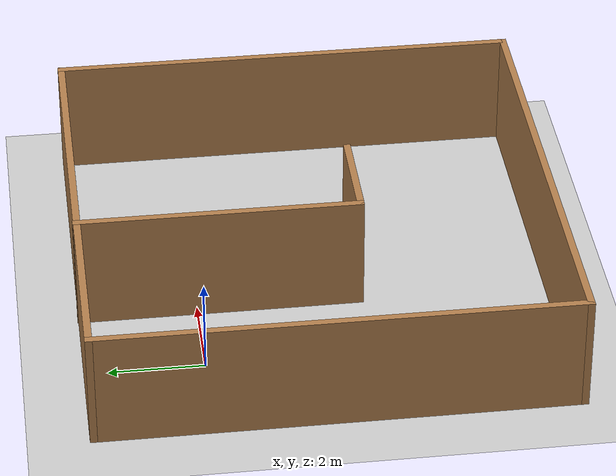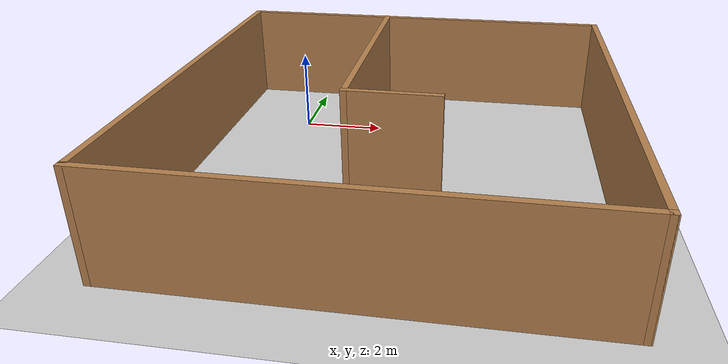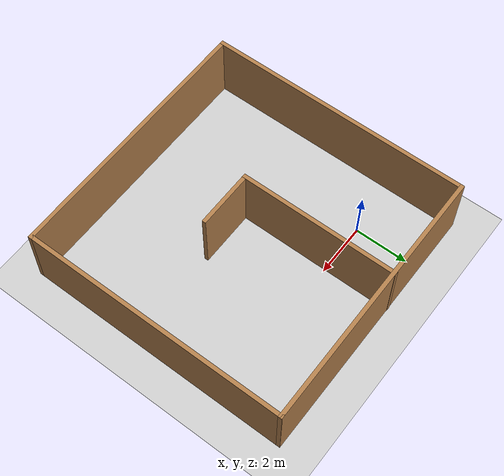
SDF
<sdf version="1.7">
 <world name="default">
  <light name="sun" type="directional">
   <pose>0 0 10 0 -0 0</pose>
   <diffuse>0.8 0.8 0.8 1</diffuse>
   <specular>0.2 0.2 0.2 1</specular>
   <attenuation>
    <range>1000</range>
    <constant>0.9</constant>
    <linear>0.01</linear>
    <quadratic>0.001</quadratic>
   </attenuation>
   <direction>-0.5 0.1 -0.9</direction>
   <spot><inner_angle>0</inner_angle><outer_angle>0</outer_angle><falloff>0</falloff></spot>
  </light>
  <model name="ground_plane">
   <static>1</static>
   <link name="link">
    <collision name="collision">
     <geometry><plane><normal>0 0 1</normal><size>100 100</size></plane></geometry>
     <surface>
      <contact><collide_bitmask>65535</collide_bitmask></contact>
      <friction><ode><mu>100</mu><mu2>50</mu2></ode></friction>
     </surface>
    </collision>
    <visual name="visual">
     <cast_shadows>0</cast_shadows>
     <geometry><plane><normal>0 0 1</normal><size>100 100</size></plane></geometry>
     <material>
      <script><uri>file://media/materials/scripts/gazebo.material</uri><name>Gazebo/Grey</name></script>
     </material>
    </visual>
   </link>
  </model>
  <gravity>0 0 -9.8</gravity>
  <magnetic_field>6e-06 2.3e-05 -4.2e-05</magnetic_field>
  <atmosphere type="adiabatic"/>
  <physics type="ode">
   <max_step_size>0.001</max_step_size>
   <real_time_factor>1</real_time_factor>
   <real_time_update_rate>1000</real_time_update_rate>
  </physics>
  <scene><ambient>0.4 0.4 0.4 1</ambient><background>0.7 0.7 0.7 1</background><shadows>1</shadows></scene>
  <spherical_coordinates>
   <surface_model>EARTH_WGS84</surface_model>
   <latitude_deg>0</latitude_deg>
   <longitude_deg>0</longitude_deg>
   <elevation>0</elevation>
   <heading_deg>0</heading_deg>
  </spherical_coordinates>
  <model name="house2">
   <pose>6.5 -2.5 0 0 -0 0</pose>
   <link name="Wall_0">
    <collision name="Wall_0_Collision">
     <geometry><box><size>10 0.15 2.5</size></box></geometry>
     <pose>0 0 1.25 0 -0 0</pose>
    </collision>
    <visual name="Wall_0_Visual">
     <pose>0 0 1.25 0 -0 0</pose>
     <geometry><box><size>10 0.15 2.5</size></box></geometry>
     <material>
      <script><uri>file://media/materials/scripts/gazebo.material</uri><name>Gazebo/Wood</name></script>
      <ambient>0.760784 0.662745 0.627451 1</ambient>
     </material>
     <meta><layer>0</layer></meta>
    </visual>
    <pose>-3.68093 -4.93232 0 0 -0 0</pose>
   </link>
   <link name="Wall_1">
    <collision name="Wall_1_Collision">
     <geometry><box><size>10 0.15 2.5</size></box></geometry>
     <pose>0 0 1.25 0 -0 0</pose>
    </collision>
    <visual name="Wall_1_Visual">
     <pose>0 0 1.25 0 -0 0</pose>
     <geometry><box><size>10 0.15 2.5</size></box></geometry>
     <material>
      <script><uri>file://media/materials/scripts/gazebo.material</uri><name>Gazebo/Wood</name></script>
      <ambient>1 1 1 1</ambient>
     </material>
     <meta><layer>0</layer></meta>
    </visual>
    <pose>1.24393 -0.007321 0 0 -0 1.57082</pose>
   </link>
   <link name="Wall_3">
    <collision name="Wall_3_Collision">
     <geometry><box><size>10 0.15 2.5</size></box></geometry>
     <pose>0 0 1.25 0 -0 0</pose>
    </collision>
    <visual name="Wall_3_Visual">
     <pose>0 0 1.25 0 -0 0</pose>
     <geometry><box><size>10 0.15 2.5</size></box></geometry>
     <material>
      <script><uri>file://media/materials/scripts/gazebo.material</uri><name>Gazebo/Wood</name></script>
      <ambient>1 1 1 1</ambient>
     </material>
     <meta><layer>0</layer></meta>
    </visual>
    <pose>-8.60593 -0.007321 0 0 -0 1.5708</pose>
   </link>
   <link name="Wall_4">
    <collision name="Wall_4_Collision">
     <geometry><box><size>10 0.15 2.5</size></box></geometry>
     <pose>0 0 1.25 0 -0 0</pose>
    </collision>
    <visual name="Wall_4_Visual">
     <pose>0 0 1.25 0 -0 0</pose>
     <geometry><box><size>10 0.15 2.5</size></box></geometry>
     <material>
      <script><uri>file://media/materials/scripts/gazebo.material</uri><name>Gazebo/Wood</name></script>
      <ambient>1 1 1 1</ambient>
     </material>
     <meta><layer>0</layer></meta>
    </visual>
    <pose>-3.68107 4.91768 0 0 -0 0</pose>
   </link>
   <link name="Wall_6">
    <collision name="Wall_6_Collision">
     <geometry><box><size>6 0.15 2.5</size></box></geometry>
     <pose>0 0 1.25 0 -0 0</pose>
    </collision>
    <visual name="Wall_6_Visual">
     <pose>0 0 1.25 0 -0 0</pose>
     <geometry><box><size>6 0.15 2.5</size></box></geometry>
     <material>
      <script><uri>file://media/materials/scripts/gazebo.material</uri><name>Gazebo/Wood</name></script>
      <ambient>1 1 1 1</ambient>
     </material>
     <meta><layer>0</layer></meta>
    </visual>
    <pose>-4.65786 2.00732 0 0 -0 -1.5708</pose>
   </link>
   <link name="Wall_8">
    <collision name="Wall_8_Collision">
     <geometry><box><size>2.25 0.15 2.5</size></box></geometry>
     <pose>0 0 1.25 0 -0 0</pose>
    </collision>
    <visual name="Wall_8_Visual">
     <pose>0 0 1.25 0 -0 0</pose>
     <geometry><box><size>2.25 0.15 2.5</size></box></geometry>
     <material>
      <script><uri>file://media/materials/scripts/gazebo.material</uri><name>Gazebo/Wood</name></script>
      <ambient>1 1 1 1</ambient>
     </material>
     <meta><layer>0</layer></meta>
    </visual>
    <pose>-3.60786 -0.917679 0 0 -0 0</pose>
   </link>
   <static>1</static>
  </model>
 </world>
</sdf>
